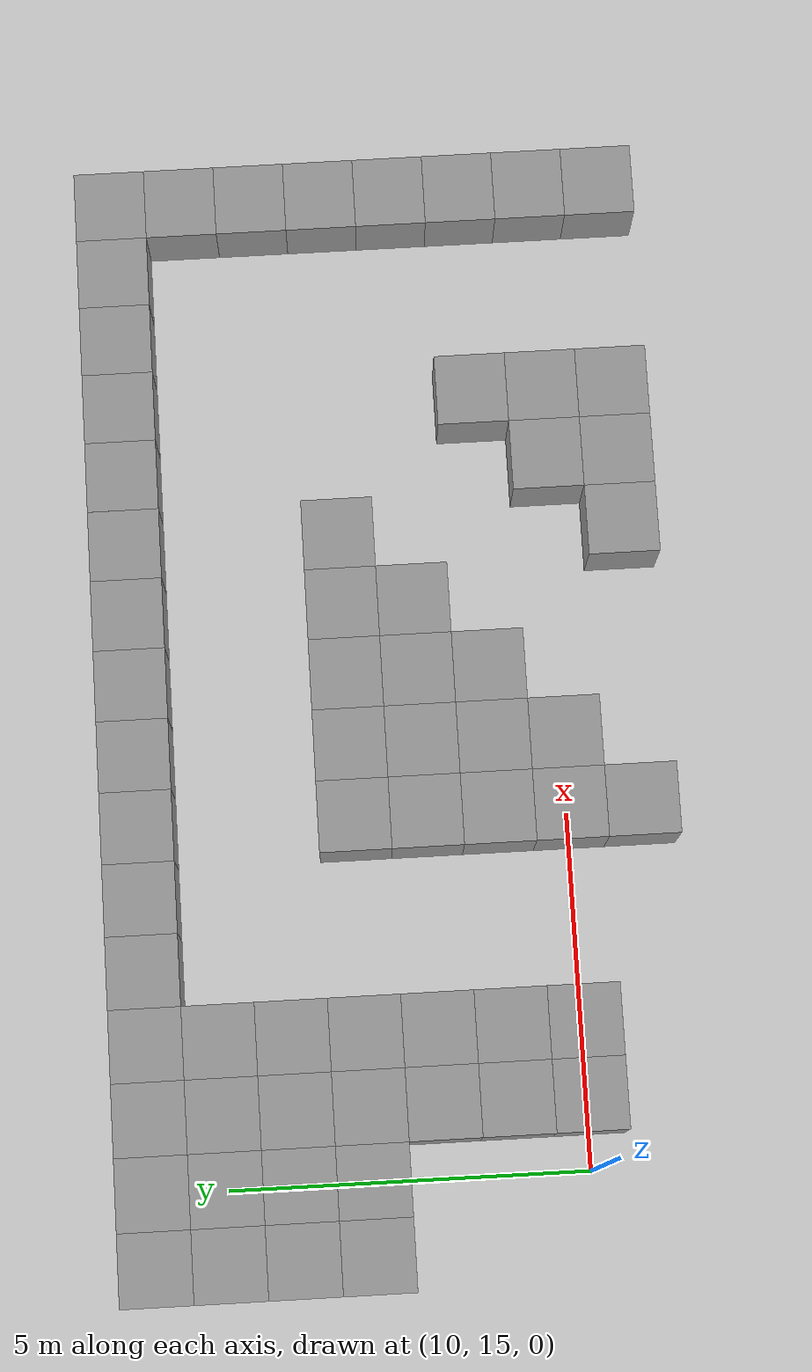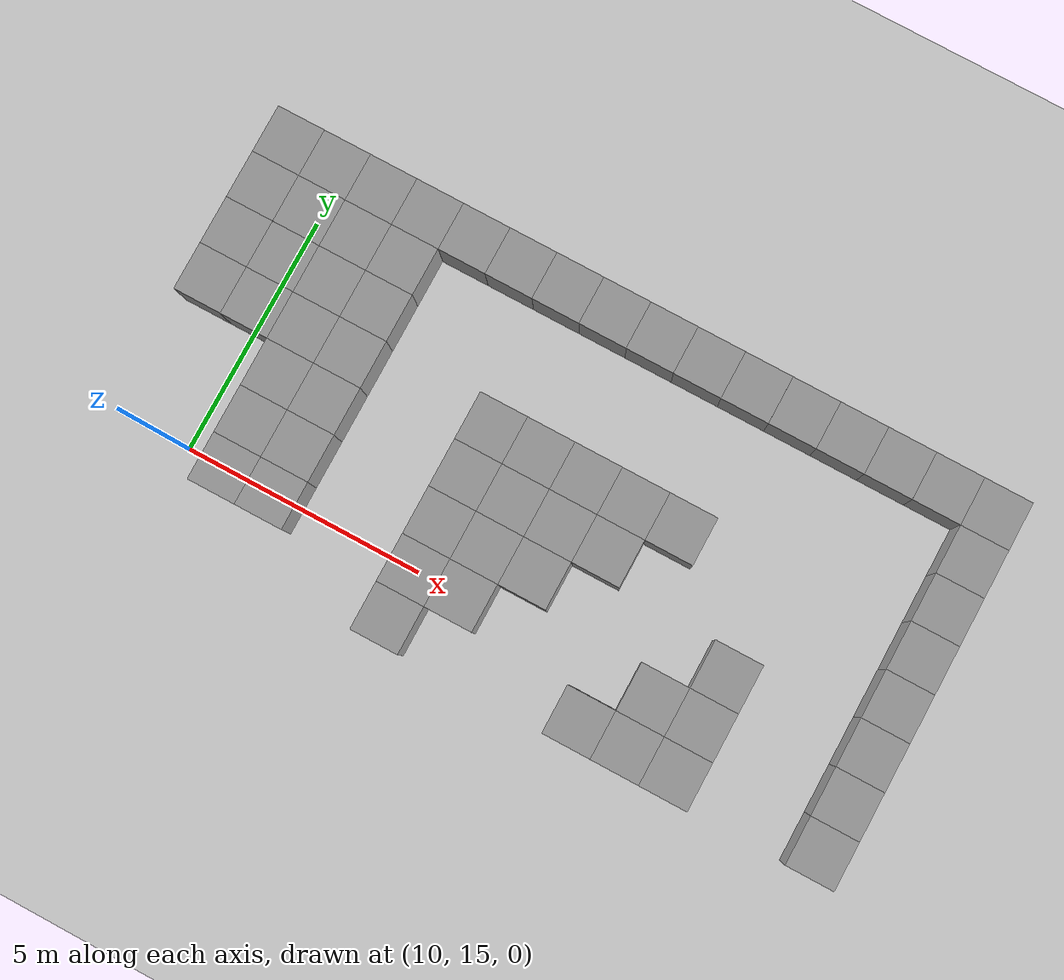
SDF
<sdf version="1.4">
 <world name="default">
  <model name="ground_plane">
   <static>true</static>
   <link name="link">
    <collision name="collision">
     <geometry><plane><normal>0 0 1</normal><size>100 100</size></plane></geometry>
     <surface><friction><ode><mu>100</mu><mu2>50</mu2></ode></friction></surface>
    </collision>
    <visual name="visual">
     <cast_shadows>0</cast_shadows>
     <geometry><plane><normal>0 0 1</normal><size>100 100</size></plane></geometry>
     <material>
      <script><uri>file://media/materials/scripts/gazebo.material</uri><name>Gazebo/Grey</name></script>
     </material>
    </visual>
    <velocity_decay><linear>0</linear><angular>0</angular></velocity_decay>
   </link>
  </model>
  <model name="unit_box_112">
   <pose>9 21 0.5 0 -0 3e-06</pose>
   <static>true</static>
   <link name="link">
    <inertial>
     <mass>1</mass>
     <inertia><ixx>1</ixx><ixy>0</ixy><ixz>0</ixz><iyy>1</iyy><iyz>0</iyz><izz>1</izz></inertia>
    </inertial>
    <collision name="collision"><geometry><box><size>1 1 1</size></box></geometry></collision>
    <visual name="visual">
     <geometry><box><size>1 1 1</size></box></geometry>
     <material>
      <script><uri>file://media/materials/scripts/gazebo.material</uri><name>Gazebo/Grey</name></script>
     </material>
    </visual>
    <velocity_decay><linear>0</linear><angular>0</angular></velocity_decay>
   </link>
   <static>true</static>
  </model>
  <model name="unit_box_113">
   <pose>10 21 0.5 0 -0 1e-06</pose>
   <static>true</static>
   <link name="link">
    <inertial>
     <mass>1</mass>
     <inertia><ixx>1</ixx><ixy>0</ixy><ixz>0</ixz><iyy>1</iyy><iyz>0</iyz><izz>1</izz></inertia>
    </inertial>
    <collision name="collision"><geometry><box><size>1 1 1</size></box></geometry></collision>
    <visual name="visual">
     <geometry><box><size>1 1 1</size></box></geometry>
     <material>
      <script><uri>file://media/materials/scripts/gazebo.material</uri><name>Gazebo/Grey</name></script>
     </material>
    </visual>
    <velocity_decay><linear>0</linear><angular>0</angular></velocity_decay>
   </link>
   <static>true</static>
  </model>
  <model name="unit_box_114">
   <pose>11 21 0.5 0 -0 1e-06</pose>
   <static>true</static>
   <link name="link">
    <inertial>
     <mass>1</mass>
     <inertia><ixx>1</ixx><ixy>0</ixy><ixz>0</ixz><iyy>1</iyy><iyz>0</iyz><izz>1</izz></inertia>
    </inertial>
    <collision name="collision"><geometry><box><size>1 1 1</size></box></geometry></collision>
    <visual name="visual">
     <geometry><box><size>1 1 1</size></box></geometry>
     <material>
      <script><uri>file://media/materials/scripts/gazebo.material</uri><name>Gazebo/Grey</name></script>
     </material>
    </visual>
    <velocity_decay><linear>0</linear><angular>0</angular></velocity_decay>
   </link>
   <static>true</static>
  </model>
  <model name="unit_box_115">
   <pose>12 21 0.5 0 0 -2e-06</pose>
   <static>true</static>
   <link name="link">
    <inertial>
     <mass>1</mass>
     <inertia><ixx>1</ixx><ixy>0</ixy><ixz>0</ixz><iyy>1</iyy><iyz>0</iyz><izz>1</izz></inertia>
    </inertial>
    <collision name="collision"><geometry><box><size>1 1 1</size></box></geometry></collision>
    <visual name="visual">
     <geometry><box><size>1 1 1</size></box></geometry>
     <material>
      <script><uri>file://media/materials/scripts/gazebo.material</uri><name>Gazebo/Grey</name></script>
     </material>
    </visual>
    <velocity_decay><linear>0</linear><angular>0</angular></velocity_decay>
   </link>
   <static>true</static>
  </model>
  <model name="unit_box_116">
   <pose>13 21 0.5 0 0 -2e-06</pose>
   <static>true</static>
   <link name="link">
    <inertial>
     <mass>1</mass>
     <inertia><ixx>1</ixx><ixy>0</ixy><ixz>0</ixz><iyy>1</iyy><iyz>0</iyz><izz>1</izz></inertia>
    </inertial>
    <collision name="collision"><geometry><box><size>1 1 1</size></box></geometry></collision>
    <visual name="visual">
     <geometry><box><size>1 1 1</size></box></geometry>
     <material>
      <script><uri>file://media/materials/scripts/gazebo.material</uri><name>Gazebo/Grey</name></script>
     </material>
    </visual>
    <velocity_decay><linear>0</linear><angular>0</angular></velocity_decay>
   </link>
   <static>true</static>
  </model>
  <model name="unit_box_121">
   <pose>14 21 0.5 0 0 -2e-06</pose>
   <static>true</static>
   <link name="link">
    <inertial>
     <mass>1</mass>
     <inertia><ixx>1</ixx><ixy>0</ixy><ixz>0</ixz><iyy>1</iyy><iyz>0</iyz><izz>1</izz></inertia>
    </inertial>
    <collision name="collision"><geometry><box><size>1 1 1</size></box></geometry></collision>
    <visual name="visual">
     <geometry><box><size>1 1 1</size></box></geometry>
     <material>
      <script><uri>file://media/materials/scripts/gazebo.material</uri><name>Gazebo/Grey</name></script>
     </material>
    </visual>
    <velocity_decay><linear>0</linear><angular>0</angular></velocity_decay>
   </link>
   <static>true</static>
  </model>
  <model name="unit_box_134">
   <pose>15 21 0.5 0 -0 1e-06</pose>
   <static>true</static>
   <link name="link">
    <inertial>
     <mass>1</mass>
     <inertia><ixx>1</ixx><ixy>0</ixy><ixz>0</ixz><iyy>1</iyy><iyz>0</iyz><izz>1</izz></inertia>
    </inertial>
    <collision name="collision"><geometry><box><size>1 1 1</size></box></geometry></collision>
    <visual name="visual">
     <geometry><box><size>1 1 1</size></box></geometry>
     <material>
      <script><uri>file://media/materials/scripts/gazebo.material</uri><name>Gazebo/Grey</name></script>
     </material>
    </visual>
    <velocity_decay><linear>0</linear><angular>0</angular></velocity_decay>
   </link>
   <static>true</static>
  </model>
  <model name="unit_box_135">
   <pose>16 21 0.5 0 -0 1e-06</pose>
   <static>true</static>
   <link name="link">
    <inertial>
     <mass>1</mass>
     <inertia><ixx>1</ixx><ixy>0</ixy><ixz>0</ixz><iyy>1</iyy><iyz>0</iyz><izz>1</izz></inertia>
    </inertial>
    <collision name="collision"><geometry><box><size>1 1 1</size></box></geometry></collision>
    <visual name="visual">
     <geometry><box><size>1 1 1</size></box></geometry>
     <material>
      <script><uri>file://media/materials/scripts/gazebo.material</uri><name>Gazebo/Grey</name></script>
     </material>
    </visual>
    <velocity_decay><linear>0</linear><angular>0</angular></velocity_decay>
   </link>
   <static>true</static>
  </model>
  <model name="unit_box_136">
   <pose>17 21 0.5 0 -0 3e-06</pose>
   <static>true</static>
   <link name="link">
    <inertial>
     <mass>1</mass>
     <inertia><ixx>1</ixx><ixy>0</ixy><ixz>0</ixz><iyy>1</iyy><iyz>0</iyz><izz>1</izz></inertia>
    </inertial>
    <collision name="collision"><geometry><box><size>1 1 1</size></box></geometry></collision>
    <visual name="visual">
     <geometry><box><size>1 1 1</size></box></geometry>
     <material>
      <script><uri>file://media/materials/scripts/gazebo.material</uri><name>Gazebo/Grey</name></script>
     </material>
    </visual>
    <velocity_decay><linear>0</linear><angular>0</angular></velocity_decay>
   </link>
   <static>true</static>
  </model>
  <model name="unit_box_137">
   <pose>18 21 0.5 0 -0 3e-06</pose>
   <static>true</static>
   <link name="link">
    <inertial>
     <mass>1</mass>
     <inertia><ixx>1</ixx><ixy>0</ixy><ixz>0</ixz><iyy>1</iyy><iyz>0</iyz><izz>1</izz></inertia>
    </inertial>
    <collision name="collision"><geometry><box><size>1 1 1</size></box></geometry></collision>
    <visual name="visual">
     <geometry><box><size>1 1 1</size></box></geometry>
     <material>
      <script><uri>file://media/materials/scripts/gazebo.material</uri><name>Gazebo/Grey</name></script>
     </material>
    </visual>
    <velocity_decay><linear>0</linear><angular>0</angular></velocity_decay>
   </link>
   <static>true</static>
  </model>
  <model name="unit_box_146">
   <pose>19 21 0.5 0 -0 3e-06</pose>
   <static>true</static>
   <link name="link">
    <inertial>
     <mass>1</mass>
     <inertia><ixx>1</ixx><ixy>0</ixy><ixz>0</ixz><iyy>1</iyy><iyz>0</iyz><izz>1</izz></inertia>
    </inertial>
    <collision name="collision"><geometry><box><size>1 1 1</size></box></geometry></collision>
    <visual name="visual">
     <geometry><box><size>1 1 1</size></box></geometry>
     <material>
      <script><uri>file://media/materials/scripts/gazebo.material</uri><name>Gazebo/Grey</name></script>
     </material>
    </visual>
    <velocity_decay><linear>0</linear><angular>0</angular></velocity_decay>
   </link>
   <static>true</static>
  </model>
  <model name="unit_box_147">
   <pose>20.0003 21 0.5 0 -0 1.4e-05</pose>
   <static>true</static>
   <link name="link">
    <inertial>
     <mass>1</mass>
     <inertia><ixx>1</ixx><ixy>0</ixy><ixz>0</ixz><iyy>1</iyy><iyz>0</iyz><izz>1</izz></inertia>
    </inertial>
    <collision name="collision"><geometry><box><size>1 1 1</size></box></geometry></collision>
    <visual name="visual">
     <geometry><box><size>1 1 1</size></box></geometry>
     <material>
      <script><uri>file://media/materials/scripts/gazebo.material</uri><name>Gazebo/Grey</name></script>
     </material>
    </visual>
    <velocity_decay><linear>0</linear><angular>0</angular></velocity_decay>
   </link>
   <static>true</static>
  </model>
  <model name="unit_box_148">
   <pose>21.0003 21 0.5 0 -0 3.3e-05</pose>
   <static>true</static>
   <link name="link">
    <inertial>
     <mass>1</mass>
     <inertia><ixx>1</ixx><ixy>0</ixy><ixz>0</ixz><iyy>1</iyy><iyz>0</iyz><izz>1</izz></inertia>
    </inertial>
    <collision name="collision"><geometry><box><size>1 1 1</size></box></geometry></collision>
    <visual name="visual">
     <geometry><box><size>1 1 1</size></box></geometry>
     <material>
      <script><uri>file://media/materials/scripts/gazebo.material</uri><name>Gazebo/Grey</name></script>
     </material>
    </visual>
    <velocity_decay><linear>0</linear><angular>0</angular></velocity_decay>
   </link>
   <static>true</static>
  </model>
  <model name="unit_box_150">
   <pose>22.0003 21.0001 0.5 0 -0 7.3e-05</pose>
   <static>true</static>
   <link name="link">
    <inertial>
     <mass>1</mass>
     <inertia><ixx>1</ixx><ixy>0</ixy><ixz>0</ixz><iyy>1</iyy><iyz>0</iyz><izz>1</izz></inertia>
    </inertial>
    <collision name="collision"><geometry><box><size>1 1 1</size></box></geometry></collision>
    <visual name="visual">
     <geometry><box><size>1 1 1</size></box></geometry>
     <material>
      <script><uri>file://media/materials/scripts/gazebo.material</uri><name>Gazebo/Grey</name></script>
     </material>
    </visual>
    <velocity_decay><linear>0</linear><angular>0</angular></velocity_decay>
   </link>
   <static>true</static>
  </model>
  <model name="unit_box_151">
   <pose>23.0004 21.0004 0.5 0 -0 0.000111</pose>
   <static>true</static>
   <link name="link">
    <inertial>
     <mass>1</mass>
     <inertia><ixx>1</ixx><ixy>0</ixy><ixz>0</ixz><iyy>1</iyy><iyz>0</iyz><izz>1</izz></inertia>
    </inertial>
    <collision name="collision"><geometry><box><size>1 1 1</size></box></geometry></collision>
    <visual name="visual">
     <geometry><box><size>1 1 1</size></box></geometry>
     <material>
      <script><uri>file://media/materials/scripts/gazebo.material</uri><name>Gazebo/Grey</name></script>
     </material>
    </visual>
    <velocity_decay><linear>0</linear><angular>0</angular></velocity_decay>
   </link>
   <static>true</static>
  </model>
  <model name="unit_box_152">
   <pose>24.0004 21.0005 0.5 0 -0 4.7e-05</pose>
   <static>true</static>
   <link name="link">
    <inertial>
     <mass>1</mass>
     <inertia><ixx>1</ixx><ixy>0</ixy><ixz>0</ixz><iyy>1</iyy><iyz>0</iyz><izz>1</izz></inertia>
    </inertial>
    <collision name="collision"><geometry><box><size>1 1 1</size></box></geometry></collision>
    <visual name="visual">
     <geometry><box><size>1 1 1</size></box></geometry>
     <material>
      <script><uri>file://media/materials/scripts/gazebo.material</uri><name>Gazebo/Grey</name></script>
     </material>
    </visual>
    <velocity_decay><linear>0</linear><angular>0</angular></velocity_decay>
   </link>
   <static>true</static>
  </model>
  <model name="unit_box_153">
   <pose>24.0001 20.0005 0.5 0 -0 2.5e-05</pose>
   <static>true</static>
   <link name="link">
    <inertial>
     <mass>1</mass>
     <inertia><ixx>1</ixx><ixy>0</ixy><ixz>0</ixz><iyy>1</iyy><iyz>0</iyz><izz>1</izz></inertia>
    </inertial>
    <collision name="collision"><geometry><box><size>1 1 1</size></box></geometry></collision>
    <visual name="visual">
     <geometry><box><size>1 1 1</size></box></geometry>
     <material>
      <script><uri>file://media/materials/scripts/gazebo.material</uri><name>Gazebo/Grey</name></script>
     </material>
    </visual>
    <velocity_decay><linear>0</linear><angular>0</angular></velocity_decay>
   </link>
   <static>true</static>
  </model>
  <model name="unit_box_154">
   <pose>24.0001 19.0005 0.5 0 -0 1.7e-05</pose>
   <static>true</static>
   <link name="link">
    <inertial>
     <mass>1</mass>
     <inertia><ixx>1</ixx><ixy>0</ixy><ixz>0</ixz><iyy>1</iyy><iyz>0</iyz><izz>1</izz></inertia>
    </inertial>
    <collision name="collision"><geometry><box><size>1 1 1</size></box></geometry></collision>
    <visual name="visual">
     <geometry><box><size>1 1 1</size></box></geometry>
     <material>
      <script><uri>file://media/materials/scripts/gazebo.material</uri><name>Gazebo/Grey</name></script>
     </material>
    </visual>
    <velocity_decay><linear>0</linear><angular>0</angular></velocity_decay>
   </link>
   <static>true</static>
  </model>
  <model name="unit_box_155">
   <pose>24.0001 18.0005 0.5 0 -0 1.3e-05</pose>
   <static>true</static>
   <link name="link">
    <inertial>
     <mass>1</mass>
     <inertia><ixx>1</ixx><ixy>0</ixy><ixz>0</ixz><iyy>1</iyy><iyz>0</iyz><izz>1</izz></inertia>
    </inertial>
    <collision name="collision"><geometry><box><size>1 1 1</size></box></geometry></collision>
    <visual name="visual">
     <geometry><box><size>1 1 1</size></box></geometry>
     <material>
      <script><uri>file://media/materials/scripts/gazebo.material</uri><name>Gazebo/Grey</name></script>
     </material>
    </visual>
    <velocity_decay><linear>0</linear><angular>0</angular></velocity_decay>
   </link>
   <static>true</static>
  </model>
  <model name="unit_box_156">
   <pose>24.0001 17.0005 0.5 0 -0 1.4e-05</pose>
   <static>true</static>
   <link name="link">
    <inertial>
     <mass>1</mass>
     <inertia><ixx>1</ixx><ixy>0</ixy><ixz>0</ixz><iyy>1</iyy><iyz>0</iyz><izz>1</izz></inertia>
    </inertial>
    <collision name="collision"><geometry><box><size>1 1 1</size></box></geometry></collision>
    <visual name="visual">
     <geometry><box><size>1 1 1</size></box></geometry>
     <material>
      <script><uri>file://media/materials/scripts/gazebo.material</uri><name>Gazebo/Grey</name></script>
     </material>
    </visual>
    <velocity_decay><linear>0</linear><angular>0</angular></velocity_decay>
   </link>
   <static>true</static>
  </model>
  <model name="unit_box_157">
   <pose>24.0002 16.0005 0.5 0 -0 1.5e-05</pose>
   <static>true</static>
   <link name="link">
    <inertial>
     <mass>1</mass>
     <inertia><ixx>1</ixx><ixy>0</ixy><ixz>0</ixz><iyy>1</iyy><iyz>0</iyz><izz>1</izz></inertia>
    </inertial>
    <collision name="collision"><geometry><box><size>1 1 1</size></box></geometry></collision>
    <visual name="visual">
     <geometry><box><size>1 1 1</size></box></geometry>
     <material>
      <script><uri>file://media/materials/scripts/gazebo.material</uri><name>Gazebo/Grey</name></script>
     </material>
    </visual>
    <velocity_decay><linear>0</linear><angular>0</angular></velocity_decay>
   </link>
   <static>true</static>
  </model>
  <model name="unit_box_158">
   <pose>24.0001 15.0005 0.5 0 -0 1.7e-05</pose>
   <static>true</static>
   <link name="link">
    <inertial>
     <mass>1</mass>
     <inertia><ixx>1</ixx><ixy>0</ixy><ixz>0</ixz><iyy>1</iyy><iyz>0</iyz><izz>1</izz></inertia>
    </inertial>
    <collision name="collision"><geometry><box><size>1 1 1</size></box></geometry></collision>
    <visual name="visual">
     <geometry><box><size>1 1 1</size></box></geometry>
     <material>
      <script><uri>file://media/materials/scripts/gazebo.material</uri><name>Gazebo/Grey</name></script>
     </material>
    </visual>
    <velocity_decay><linear>0</linear><angular>0</angular></velocity_decay>
   </link>
   <static>true</static>
  </model>
  <model name="unit_box_159">
   <pose>24 14.0005 0.5 0 -0 2e-05</pose>
   <static>true</static>
   <link name="link">
    <inertial>
     <mass>1</mass>
     <inertia><ixx>1</ixx><ixy>0</ixy><ixz>0</ixz><iyy>1</iyy><iyz>0</iyz><izz>1</izz></inertia>
    </inertial>
    <collision name="collision"><geometry><box><size>1 1 1</size></box></geometry></collision>
    <visual name="visual">
     <geometry><box><size>1 1 1</size></box></geometry>
     <material>
      <script><uri>file://media/materials/scripts/gazebo.material</uri><name>Gazebo/Grey</name></script>
     </material>
    </visual>
    <velocity_decay><linear>0</linear><angular>0</angular></velocity_decay>
   </link>
   <static>true</static>
  </model>
  <model name="unit_box_333">
   <pose>9.00001 18 0.5 0 -0 1e-06</pose>
   <link name="link">
    <inertial>
     <mass>1</mass>
     <inertia><ixx>1</ixx><ixy>0</ixy><ixz>0</ixz><iyy>1</iyy><iyz>0</iyz><izz>1</izz></inertia>
    </inertial>
    <collision name="collision"><geometry><box><size>1 1 1</size></box></geometry></collision>
    <visual name="visual">
     <geometry><box><size>1 1 1</size></box></geometry>
     <material>
      <script><uri>file://media/materials/scripts/gazebo.material</uri><name>Gazebo/Grey</name></script>
     </material>
    </visual>
    <velocity_decay><linear>0</linear><angular>0</angular></velocity_decay>
   </link>
   <static>true</static>
  </model>
  <model name="unit_box_334">
   <pose>10 18 0.5 0 -0 2e-06</pose>
   <link name="link">
    <inertial>
     <mass>1</mass>
     <inertia><ixx>1</ixx><ixy>0</ixy><ixz>0</ixz><iyy>1</iyy><iyz>0</iyz><izz>1</izz></inertia>
    </inertial>
    <collision name="collision"><geometry><box><size>1 1 1</size></box></geometry></collision>
    <visual name="visual">
     <geometry><box><size>1 1 1</size></box></geometry>
     <material>
      <script><uri>file://media/materials/scripts/gazebo.material</uri><name>Gazebo/Grey</name></script>
     </material>
    </visual>
    <velocity_decay><linear>0</linear><angular>0</angular></velocity_decay>
   </link>
   <static>true</static>
  </model>
  <model name="unit_box_335">
   <pose>11 18 0.5 0 -0 2e-06</pose>
   <link name="link">
    <inertial>
     <mass>1</mass>
     <inertia><ixx>1</ixx><ixy>0</ixy><ixz>0</ixz><iyy>1</iyy><iyz>0</iyz><izz>1</izz></inertia>
    </inertial>
    <collision name="collision"><geometry><box><size>1 1 1</size></box></geometry></collision>
    <visual name="visual">
     <geometry><box><size>1 1 1</size></box></geometry>
     <material>
      <script><uri>file://media/materials/scripts/gazebo.material</uri><name>Gazebo/Grey</name></script>
     </material>
    </visual>
    <velocity_decay><linear>0</linear><angular>0</angular></velocity_decay>
   </link>
   <static>true</static>
  </model>
  <model name="unit_box_336">
   <pose>11 17 0.5 0 -0 1e-06</pose>
   <link name="link">
    <inertial>
     <mass>1</mass>
     <inertia><ixx>1</ixx><ixy>0</ixy><ixz>0</ixz><iyy>1</iyy><iyz>0</iyz><izz>1</izz></inertia>
    </inertial>
    <collision name="collision"><geometry><box><size>1 1 1</size></box></geometry></collision>
    <visual name="visual">
     <geometry><box><size>1 1 1</size></box></geometry>
     <material>
      <script><uri>file://media/materials/scripts/gazebo.material</uri><name>Gazebo/Grey</name></script>
     </material>
    </visual>
    <velocity_decay><linear>0</linear><angular>0</angular></velocity_decay>
   </link>
   <static>true</static>
  </model>
  <model name="unit_box_337">
   <pose>11 16 0.5 -0 -0 -1e-06</pose>
   <link name="link">
    <inertial>
     <mass>1</mass>
     <inertia><ixx>1</ixx><ixy>0</ixy><ixz>0</ixz><iyy>1</iyy><iyz>0</iyz><izz>1</izz></inertia>
    </inertial>
    <collision name="collision"><geometry><box><size>1 1 1</size></box></geometry></collision>
    <visual name="visual">
     <geometry><box><size>1 1 1</size></box></geometry>
     <material>
      <script><uri>file://media/materials/scripts/gazebo.material</uri><name>Gazebo/Grey</name></script>
     </material>
    </visual>
    <velocity_decay><linear>0</linear><angular>0</angular></velocity_decay>
   </link>
   <static>true</static>
  </model>
  <model name="unit_box_338">
   <pose>11 15 0.5 0 -0 -2e-06</pose>
   <link name="link">
    <inertial>
     <mass>1</mass>
     <inertia><ixx>1</ixx><ixy>0</ixy><ixz>0</ixz><iyy>1</iyy><iyz>0</iyz><izz>1</izz></inertia>
    </inertial>
    <collision name="collision"><geometry><box><size>1 1 1</size></box></geometry></collision>
    <visual name="visual">
     <geometry><box><size>1 1 1</size></box></geometry>
     <material>
      <script><uri>file://media/materials/scripts/gazebo.material</uri><name>Gazebo/Grey</name></script>
     </material>
    </visual>
    <velocity_decay><linear>0</linear><angular>0</angular></velocity_decay>
   </link>
   <static>true</static>
  </model>
  <model name="unit_box_347">
   <pose>12 15 0.5 0 -0 0</pose>
   <link name="link">
    <inertial>
     <mass>1</mass>
     <inertia><ixx>1</ixx><ixy>0</ixy><ixz>0</ixz><iyy>1</iyy><iyz>0</iyz><izz>1</izz></inertia>
    </inertial>
    <collision name="collision"><geometry><box><size>1 1 1</size></box></geometry></collision>
    <visual name="visual">
     <geometry><box><size>1 1 1</size></box></geometry>
     <material>
      <script><uri>file://media/materials/scripts/gazebo.material</uri><name>Gazebo/Grey</name></script>
     </material>
    </visual>
    <velocity_decay><linear>0</linear><angular>0</angular></velocity_decay>
   </link>
   <static>true</static>
  </model>
  <model name="unit_box_348">
   <pose>12 16 0.5 0 -0 0</pose>
   <link name="link">
    <inertial>
     <mass>1</mass>
     <inertia><ixx>1</ixx><ixy>0</ixy><ixz>0</ixz><iyy>1</iyy><iyz>0</iyz><izz>1</izz></inertia>
    </inertial>
    <collision name="collision"><geometry><box><size>1 1 1</size></box></geometry></collision>
    <visual name="visual">
     <geometry><box><size>1 1 1</size></box></geometry>
     <material>
      <script><uri>file://media/materials/scripts/gazebo.material</uri><name>Gazebo/Grey</name></script>
     </material>
    </visual>
    <velocity_decay><linear>0</linear><angular>0</angular></velocity_decay>
   </link>
   <static>true</static>
  </model>
  <model name="unit_box_349">
   <pose>12 17 0.5 -0 -0 -2e-06</pose>
   <link name="link">
    <inertial>
     <mass>1</mass>
     <inertia><ixx>1</ixx><ixy>0</ixy><ixz>0</ixz><iyy>1</iyy><iyz>0</iyz><izz>1</izz></inertia>
    </inertial>
    <collision name="collision"><geometry><box><size>1 1 1</size></box></geometry></collision>
    <visual name="visual">
     <geometry><box><size>1 1 1</size></box></geometry>
     <material>
      <script><uri>file://media/materials/scripts/gazebo.material</uri><name>Gazebo/Grey</name></script>
     </material>
    </visual>
    <velocity_decay><linear>0</linear><angular>0</angular></velocity_decay>
   </link>
   <static>true</static>
  </model>
  <model name="unit_box_350">
   <pose>12 18 0.5 0 -0 -3e-06</pose>
   <link name="link">
    <inertial>
     <mass>1</mass>
     <inertia><ixx>1</ixx><ixy>0</ixy><ixz>0</ixz><iyy>1</iyy><iyz>0</iyz><izz>1</izz></inertia>
    </inertial>
    <collision name="collision"><geometry><box><size>1 1 1</size></box></geometry></collision>
    <visual name="visual">
     <geometry><box><size>1 1 1</size></box></geometry>
     <material>
      <script><uri>file://media/materials/scripts/gazebo.material</uri><name>Gazebo/Grey</name></script>
     </material>
    </visual>
    <velocity_decay><linear>0</linear><angular>0</angular></velocity_decay>
   </link>
   <static>true</static>
  </model>
  <model name="unit_box_351">
   <pose>12 19 0.5 -0 -0 -3e-06</pose>
   <link name="link">
    <inertial>
     <mass>1</mass>
     <inertia><ixx>1</ixx><ixy>0</ixy><ixz>0</ixz><iyy>1</iyy><iyz>0</iyz><izz>1</izz></inertia>
    </inertial>
    <collision name="collision"><geometry><box><size>1 1 1</size></box></geometry></collision>
    <visual name="visual">
     <geometry><box><size>1 1 1</size></box></geometry>
     <material>
      <script><uri>file://media/materials/scripts/gazebo.material</uri><name>Gazebo/Grey</name></script>
     </material>
    </visual>
    <velocity_decay><linear>0</linear><angular>0</angular></velocity_decay>
   </link>
   <static>true</static>
  </model>
  <model name="unit_box_352">
   <pose>11 19 0.5 0 -0 2e-06</pose>
   <link name="link">
    <inertial>
     <mass>1</mass>
     <inertia><ixx>1</ixx><ixy>0</ixy><ixz>0</ixz><iyy>1</iyy><iyz>0</iyz><izz>1</izz></inertia>
    </inertial>
    <collision name="collision"><geometry><box><size>1 1 1</size></box></geometry></collision>
    <visual name="visual">
     <geometry><box><size>1 1 1</size></box></geometry>
     <material>
      <script><uri>file://media/materials/scripts/gazebo.material</uri><name>Gazebo/Grey</name></script>
     </material>
    </visual>
    <velocity_decay><linear>0</linear><angular>0</angular></velocity_decay>
   </link>
   <static>true</static>
  </model>
  <model name="unit_box_353">
   <pose>10 19 0.5 0 -0 2e-06</pose>
   <link name="link">
    <inertial>
     <mass>1</mass>
     <inertia><ixx>1</ixx><ixy>0</ixy><ixz>0</ixz><iyy>1</iyy><iyz>0</iyz><izz>1</izz></inertia>
    </inertial>
    <collision name="collision"><geometry><box><size>1 1 1</size></box></geometry></collision>
    <visual name="visual">
     <geometry><box><size>1 1 1</size></box></geometry>
     <material>
      <script><uri>file://media/materials/scripts/gazebo.material</uri><name>Gazebo/Grey</name></script>
     </material>
    </visual>
    <velocity_decay><linear>0</linear><angular>0</angular></velocity_decay>
   </link>
   <static>true</static>
  </model>
  <model name="unit_box_354">
   <pose>9.00001 19 0.5 0 -0 2e-06</pose>
   <link name="link">
    <inertial>
     <mass>1</mass>
     <inertia><ixx>1</ixx><ixy>0</ixy><ixz>0</ixz><iyy>1</iyy><iyz>0</iyz><izz>1</izz></inertia>
    </inertial>
    <collision name="collision"><geometry><box><size>1 1 1</size></box></geometry></collision>
    <visual name="visual">
     <geometry><box><size>1 1 1</size></box></geometry>
     <material>
      <script><uri>file://media/materials/scripts/gazebo.material</uri><name>Gazebo/Grey</name></script>
     </material>
    </visual>
    <velocity_decay><linear>0</linear><angular>0</angular></velocity_decay>
   </link>
   <static>true</static>
  </model>
  <model name="unit_box_364">
   <pose>9 20 0.5 0 -0 3e-06</pose>
   <link name="link">
    <inertial>
     <mass>1</mass>
     <inertia><ixx>1</ixx><ixy>0</ixy><ixz>0</ixz><iyy>1</iyy><iyz>0</iyz><izz>1</izz></inertia>
    </inertial>
    <collision name="collision"><geometry><box><size>1 1 1</size></box></geometry></collision>
    <visual name="visual">
     <geometry><box><size>1 1 1</size></box></geometry>
     <material>
      <script><uri>file://media/materials/scripts/gazebo.material</uri><name>Gazebo/Grey</name></script>
     </material>
    </visual>
    <velocity_decay><linear>0</linear><angular>0</angular></velocity_decay>
   </link>
   <static>true</static>
  </model>
  <model name="unit_box_365">
   <pose>10 20 0.5 0 -0 1e-06</pose>
   <link name="link">
    <inertial>
     <mass>1</mass>
     <inertia><ixx>1</ixx><ixy>0</ixy><ixz>0</ixz><iyy>1</iyy><iyz>0</iyz><izz>1</izz></inertia>
    </inertial>
    <collision name="collision"><geometry><box><size>1 1 1</size></box></geometry></collision>
    <visual name="visual">
     <geometry><box><size>1 1 1</size></box></geometry>
     <material>
      <script><uri>file://media/materials/scripts/gazebo.material</uri><name>Gazebo/Grey</name></script>
     </material>
    </visual>
    <velocity_decay><linear>0</linear><angular>0</angular></velocity_decay>
   </link>
   <static>true</static>
  </model>
  <model name="unit_box_366">
   <pose>11 20 0.5 0 -0 2e-06</pose>
   <link name="link">
    <inertial>
     <mass>1</mass>
     <inertia><ixx>1</ixx><ixy>0</ixy><ixz>0</ixz><iyy>1</iyy><iyz>0</iyz><izz>1</izz></inertia>
    </inertial>
    <collision name="collision"><geometry><box><size>1 1 1</size></box></geometry></collision>
    <visual name="visual">
     <geometry><box><size>1 1 1</size></box></geometry>
     <material>
      <script><uri>file://media/materials/scripts/gazebo.material</uri><name>Gazebo/Grey</name></script>
     </material>
    </visual>
    <velocity_decay><linear>0</linear><angular>0</angular></velocity_decay>
   </link>
   <static>true</static>
  </model>
  <model name="unit_box_367">
   <pose>12 20 0.5 0 -0 -2e-06</pose>
   <link name="link">
    <inertial>
     <mass>1</mass>
     <inertia><ixx>1</ixx><ixy>0</ixy><ixz>0</ixz><iyy>1</iyy><iyz>0</iyz><izz>1</izz></inertia>
    </inertial>
    <collision name="collision"><geometry><box><size>1 1 1</size></box></geometry></collision>
    <visual name="visual">
     <geometry><box><size>1 1 1</size></box></geometry>
     <material>
      <script><uri>file://media/materials/scripts/gazebo.material</uri><name>Gazebo/Grey</name></script>
     </material>
    </visual>
    <velocity_decay><linear>0</linear><angular>0</angular></velocity_decay>
   </link>
   <static>true</static>
  </model>
  <model name="unit_box_368">
   <pose>15 18 0.5 0 -0 1e-06</pose>
   <link name="link">
    <inertial>
     <mass>1</mass>
     <inertia><ixx>1</ixx><ixy>0</ixy><ixz>0</ixz><iyy>1</iyy><iyz>0</iyz><izz>1</izz></inertia>
    </inertial>
    <collision name="collision"><geometry><box><size>1 1 1</size></box></geometry></collision>
    <visual name="visual">
     <geometry><box><size>1 1 1</size></box></geometry>
     <material>
      <script><uri>file://media/materials/scripts/gazebo.material</uri><name>Gazebo/Grey</name></script>
     </material>
    </visual>
    <velocity_decay><linear>0</linear><angular>0</angular></velocity_decay>
   </link>
   <static>true</static>
  </model>
  <model name="unit_box_369">
   <pose>15 17 0.5 0 0 -1e-06</pose>
   <link name="link">
    <inertial>
     <mass>1</mass>
     <inertia><ixx>1</ixx><ixy>0</ixy><ixz>0</ixz><iyy>1</iyy><iyz>0</iyz><izz>1</izz></inertia>
    </inertial>
    <collision name="collision"><geometry><box><size>1 1 1</size></box></geometry></collision>
    <visual name="visual">
     <geometry><box><size>1 1 1</size></box></geometry>
     <material>
      <script><uri>file://media/materials/scripts/gazebo.material</uri><name>Gazebo/Grey</name></script>
     </material>
    </visual>
    <velocity_decay><linear>0</linear><angular>0</angular></velocity_decay>
   </link>
   <static>true</static>
  </model>
  <model name="unit_box_370">
   <pose>15 16 0.5 0 0 -1e-06</pose>
   <link name="link">
    <inertial>
     <mass>1</mass>
     <inertia><ixx>1</ixx><ixy>0</ixy><ixz>0</ixz><iyy>1</iyy><iyz>0</iyz><izz>1</izz></inertia>
    </inertial>
    <collision name="collision"><geometry><box><size>1 1 1</size></box></geometry></collision>
    <visual name="visual">
     <geometry><box><size>1 1 1</size></box></geometry>
     <material>
      <script><uri>file://media/materials/scripts/gazebo.material</uri><name>Gazebo/Grey</name></script>
     </material>
    </visual>
    <velocity_decay><linear>0</linear><angular>0</angular></velocity_decay>
   </link>
   <static>true</static>
  </model>
  <model name="unit_box_371">
   <pose>15 15 0.5 0 0 -2e-06</pose>
   <link name="link">
    <inertial>
     <mass>1</mass>
     <inertia><ixx>1</ixx><ixy>0</ixy><ixz>0</ixz><iyy>1</iyy><iyz>0</iyz><izz>1</izz></inertia>
    </inertial>
    <collision name="collision"><geometry><box><size>1 1 1</size></box></geometry></collision>
    <visual name="visual">
     <geometry><box><size>1 1 1</size></box></geometry>
     <material>
      <script><uri>file://media/materials/scripts/gazebo.material</uri><name>Gazebo/Grey</name></script>
     </material>
    </visual>
    <velocity_decay><linear>0</linear><angular>0</angular></velocity_decay>
   </link>
   <static>true</static>
  </model>
  <model name="unit_box_372">
   <pose>15 14 0.5 0 0 -3e-06</pose>
   <link name="link">
    <inertial>
     <mass>1</mass>
     <inertia><ixx>1</ixx><ixy>0</ixy><ixz>0</ixz><iyy>1</iyy><iyz>0</iyz><izz>1</izz></inertia>
    </inertial>
    <collision name="collision"><geometry><box><size>1 1 1</size></box></geometry></collision>
    <visual name="visual">
     <geometry><box><size>1 1 1</size></box></geometry>
     <material>
      <script><uri>file://media/materials/scripts/gazebo.material</uri><name>Gazebo/Grey</name></script>
     </material>
    </visual>
    <velocity_decay><linear>0</linear><angular>0</angular></velocity_decay>
   </link>
   <static>true</static>
  </model>
  <model name="unit_box_373">
   <pose>16 15 0.5 0 -0 -1e-06</pose>
   <link name="link">
    <inertial>
     <mass>1</mass>
     <inertia><ixx>1</ixx><ixy>0</ixy><ixz>0</ixz><iyy>1</iyy><iyz>0</iyz><izz>1</izz></inertia>
    </inertial>
    <collision name="collision"><geometry><box><size>1 1 1</size></box></geometry></collision>
    <visual name="visual">
     <geometry><box><size>1 1 1</size></box></geometry>
     <material>
      <script><uri>file://media/materials/scripts/gazebo.material</uri><name>Gazebo/Grey</name></script>
     </material>
    </visual>
    <velocity_decay><linear>0</linear><angular>0</angular></velocity_decay>
   </link>
   <static>true</static>
  </model>
  <model name="unit_box_374">
   <pose>16 16 0.5 -0 -0 -1e-06</pose>
   <link name="link">
    <inertial>
     <mass>1</mass>
     <inertia><ixx>1</ixx><ixy>0</ixy><ixz>0</ixz><iyy>1</iyy><iyz>0</iyz><izz>1</izz></inertia>
    </inertial>
    <collision name="collision"><geometry><box><size>1 1 1</size></box></geometry></collision>
    <visual name="visual">
     <geometry><box><size>1 1 1</size></box></geometry>
     <material>
      <script><uri>file://media/materials/scripts/gazebo.material</uri><name>Gazebo/Grey</name></script>
     </material>
    </visual>
    <velocity_decay><linear>0</linear><angular>0</angular></velocity_decay>
   </link>
   <static>true</static>
  </model>
  <model name="unit_box_376">
   <pose>16 17 0.5 0 -0 0</pose>
   <link name="link">
    <inertial>
     <mass>1</mass>
     <inertia><ixx>1</ixx><ixy>0</ixy><ixz>0</ixz><iyy>1</iyy><iyz>0</iyz><izz>1</izz></inertia>
    </inertial>
    <collision name="collision"><geometry><box><size>1 1 1</size></box></geometry></collision>
    <visual name="visual">
     <geometry><box><size>1 1 1</size></box></geometry>
     <material>
      <script><uri>file://media/materials/scripts/gazebo.material</uri><name>Gazebo/Grey</name></script>
     </material>
    </visual>
    <velocity_decay><linear>0</linear><angular>0</angular></velocity_decay>
   </link>
   <static>true</static>
  </model>
  <model name="unit_box_377">
   <pose>16 18 0.5 0 -0 1e-06</pose>
   <link name="link">
    <inertial>
     <mass>1</mass>
     <inertia><ixx>1</ixx><ixy>0</ixy><ixz>0</ixz><iyy>1</iyy><iyz>0</iyz><izz>1</izz></inertia>
    </inertial>
    <collision name="collision"><geometry><box><size>1 1 1</size></box></geometry></collision>
    <visual name="visual">
     <geometry><box><size>1 1 1</size></box></geometry>
     <material>
      <script><uri>file://media/materials/scripts/gazebo.material</uri><name>Gazebo/Grey</name></script>
     </material>
    </visual>
    <velocity_decay><linear>0</linear><angular>0</angular></velocity_decay>
   </link>
   <static>true</static>
  </model>
  <model name="unit_box_378">
   <pose>17 16 0.5 0 -0 1e-06</pose>
   <link name="link">
    <inertial>
     <mass>1</mass>
     <inertia><ixx>1</ixx><ixy>0</ixy><ixz>0</ixz><iyy>1</iyy><iyz>0</iyz><izz>1</izz></inertia>
    </inertial>
    <collision name="collision"><geometry><box><size>1 1 1</size></box></geometry></collision>
    <visual name="visual">
     <geometry><box><size>1 1 1</size></box></geometry>
     <material>
      <script><uri>file://media/materials/scripts/gazebo.material</uri><name>Gazebo/Grey</name></script>
     </material>
    </visual>
    <velocity_decay><linear>0</linear><angular>0</angular></velocity_decay>
   </link>
   <static>true</static>
  </model>
  <model name="unit_box_379">
   <pose>17 17 0.5 0 -0 0</pose>
   <link name="link">
    <inertial>
     <mass>1</mass>
     <inertia><ixx>1</ixx><ixy>0</ixy><ixz>0</ixz><iyy>1</iyy><iyz>0</iyz><izz>1</izz></inertia>
    </inertial>
    <collision name="collision"><geometry><box><size>1 1 1</size></box></geometry></collision>
    <visual name="visual">
     <geometry><box><size>1 1 1</size></box></geometry>
     <material>
      <script><uri>file://media/materials/scripts/gazebo.material</uri><name>Gazebo/Grey</name></script>
     </material>
    </visual>
    <velocity_decay><linear>0</linear><angular>0</angular></velocity_decay>
   </link>
   <static>true</static>
  </model>
  <model name="unit_box_380">
   <pose>17 18 0.5 0 -0 2e-06</pose>
   <link name="link">
    <inertial>
     <mass>1</mass>
     <inertia><ixx>1</ixx><ixy>0</ixy><ixz>0</ixz><iyy>1</iyy><iyz>0</iyz><izz>1</izz></inertia>
    </inertial>
    <collision name="collision"><geometry><box><size>1 1 1</size></box></geometry></collision>
    <visual name="visual">
     <geometry><box><size>1 1 1</size></box></geometry>
     <material>
      <script><uri>file://media/materials/scripts/gazebo.material</uri><name>Gazebo/Grey</name></script>
     </material>
    </visual>
    <velocity_decay><linear>0</linear><angular>0</angular></velocity_decay>
   </link>
   <static>true</static>
  </model>
  <model name="unit_box_381">
   <pose>18 17 0.5 0 -0 4e-06</pose>
   <link name="link">
    <inertial>
     <mass>1</mass>
     <inertia><ixx>1</ixx><ixy>0</ixy><ixz>0</ixz><iyy>1</iyy><iyz>0</iyz><izz>1</izz></inertia>
    </inertial>
    <collision name="collision"><geometry><box><size>1 1 1</size></box></geometry></collision>
    <visual name="visual">
     <geometry><box><size>1 1 1</size></box></geometry>
     <material>
      <script><uri>file://media/materials/scripts/gazebo.material</uri><name>Gazebo/Grey</name></script>
     </material>
    </visual>
    <velocity_decay><linear>0</linear><angular>0</angular></velocity_decay>
   </link>
   <static>true</static>
  </model>
  <model name="unit_box_382">
   <pose>18 18 0.5 0 -1e-06 5e-06</pose>
   <link name="link">
    <inertial>
     <mass>1</mass>
     <inertia><ixx>1</ixx><ixy>0</ixy><ixz>0</ixz><iyy>1</iyy><iyz>0</iyz><izz>1</izz></inertia>
    </inertial>
    <collision name="collision"><geometry><box><size>1 1 1</size></box></geometry></collision>
    <visual name="visual">
     <geometry><box><size>1 1 1</size></box></geometry>
     <material>
      <script><uri>file://media/materials/scripts/gazebo.material</uri><name>Gazebo/Grey</name></script>
     </material>
    </visual>
    <velocity_decay><linear>0</linear><angular>0</angular></velocity_decay>
   </link>
   <static>true</static>
  </model>
  <model name="unit_box_383">
   <pose>19 18 0.5 0 -0 5e-06</pose>
   <link name="link">
    <inertial>
     <mass>1</mass>
     <inertia><ixx>1</ixx><ixy>0</ixy><ixz>0</ixz><iyy>1</iyy><iyz>0</iyz><izz>1</izz></inertia>
    </inertial>
    <collision name="collision"><geometry><box><size>1 1 1</size></box></geometry></collision>
    <visual name="visual">
     <geometry><box><size>1 1 1</size></box></geometry>
     <material>
      <script><uri>file://media/materials/scripts/gazebo.material</uri><name>Gazebo/Grey</name></script>
     </material>
    </visual>
    <velocity_decay><linear>0</linear><angular>0</angular></velocity_decay>
   </link>
   <static>true</static>
  </model>
  <model name="unit_box_384">
   <pose>21 16 0.5 0 -0 1e-06</pose>
   <link name="link">
    <inertial>
     <mass>1</mass>
     <inertia><ixx>1</ixx><ixy>0</ixy><ixz>0</ixz><iyy>1</iyy><iyz>0</iyz><izz>1</izz></inertia>
    </inertial>
    <collision name="collision"><geometry><box><size>1 1 1</size></box></geometry></collision>
    <visual name="visual">
     <geometry><box><size>1 1 1</size></box></geometry>
     <material>
      <script><uri>file://media/materials/scripts/gazebo.material</uri><name>Gazebo/Grey</name></script>
     </material>
    </visual>
    <velocity_decay><linear>0</linear><angular>0</angular></velocity_decay>
   </link>
   <static>true</static>
  </model>
  <model name="unit_box_385">
   <pose>21 15 0.5 0 -0 1e-06</pose>
   <link name="link">
    <inertial>
     <mass>1</mass>
     <inertia><ixx>1</ixx><ixy>0</ixy><ixz>0</ixz><iyy>1</iyy><iyz>0</iyz><izz>1</izz></inertia>
    </inertial>
    <collision name="collision"><geometry><box><size>1 1 1</size></box></geometry></collision>
    <visual name="visual">
     <geometry><box><size>1 1 1</size></box></geometry>
     <material>
      <script><uri>file://media/materials/scripts/gazebo.material</uri><name>Gazebo/Grey</name></script>
     </material>
    </visual>
    <velocity_decay><linear>0</linear><angular>0</angular></velocity_decay>
   </link>
   <static>true</static>
  </model>
  <model name="unit_box_386">
   <pose>21 14 0.5 0 -0 2e-06</pose>
   <link name="link">
    <inertial>
     <mass>1</mass>
     <inertia><ixx>1</ixx><ixy>0</ixy><ixz>0</ixz><iyy>1</iyy><iyz>0</iyz><izz>1</izz></inertia>
    </inertial>
    <collision name="collision"><geometry><box><size>1 1 1</size></box></geometry></collision>
    <visual name="visual">
     <geometry><box><size>1 1 1</size></box></geometry>
     <material>
      <script><uri>file://media/materials/scripts/gazebo.material</uri><name>Gazebo/Grey</name></script>
     </material>
    </visual>
    <velocity_decay><linear>0</linear><angular>0</angular></velocity_decay>
   </link>
   <static>true</static>
  </model>
  <model name="unit_box_393">
   <pose>20 14 0.5 0 -0 1e-06</pose>
   <link name="link">
    <inertial>
     <mass>1</mass>
     <inertia><ixx>1</ixx><ixy>0</ixy><ixz>0</ixz><iyy>1</iyy><iyz>0</iyz><izz>1</izz></inertia>
    </inertial>
    <collision name="collision"><geometry><box><size>1 1 1</size></box></geometry></collision>
    <visual name="visual">
     <geometry><box><size>1 1 1</size></box></geometry>
     <material>
      <script><uri>file://media/materials/scripts/gazebo.material</uri><name>Gazebo/Grey</name></script>
     </material>
    </visual>
    <velocity_decay><linear>0</linear><angular>0</angular></velocity_decay>
   </link>
   <static>true</static>
  </model>
  <model name="unit_box_394">
   <pose>20 15 0.5 0 -0 1e-06</pose>
   <link name="link">
    <inertial>
     <mass>1</mass>
     <inertia><ixx>1</ixx><ixy>0</ixy><ixz>0</ixz><iyy>1</iyy><iyz>0</iyz><izz>1</izz></inertia>
    </inertial>
    <collision name="collision"><geometry><box><size>1 1 1</size></box></geometry></collision>
    <visual name="visual">
     <geometry><box><size>1 1 1</size></box></geometry>
     <material>
      <script><uri>file://media/materials/scripts/gazebo.material</uri><name>Gazebo/Grey</name></script>
     </material>
    </visual>
    <velocity_decay><linear>0</linear><angular>0</angular></velocity_decay>
   </link>
   <static>true</static>
  </model>
  <model name="unit_box_395">
   <pose>19 14 0.5 0 -0 5e-06</pose>
   <link name="link">
    <inertial>
     <mass>1</mass>
     <inertia><ixx>1</ixx><ixy>0</ixy><ixz>0</ixz><iyy>1</iyy><iyz>0</iyz><izz>1</izz></inertia>
    </inertial>
    <collision name="collision"><geometry><box><size>1 1 1</size></box></geometry></collision>
    <visual name="visual">
     <geometry><box><size>1 1 1</size></box></geometry>
     <material>
      <script><uri>file://media/materials/scripts/gazebo.material</uri><name>Gazebo/Grey</name></script>
     </material>
    </visual>
    <velocity_decay><linear>0</linear><angular>0</angular></velocity_decay>
   </link>
   <static>true</static>
  </model>
 </world>
</sdf>
